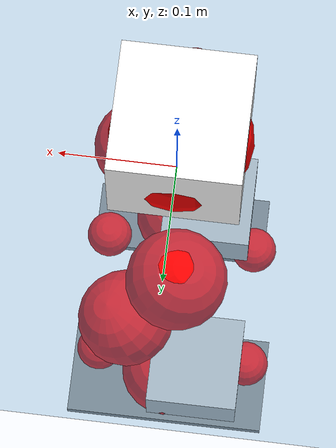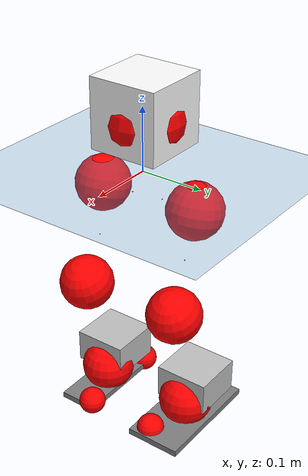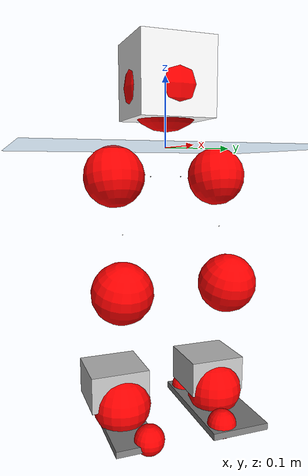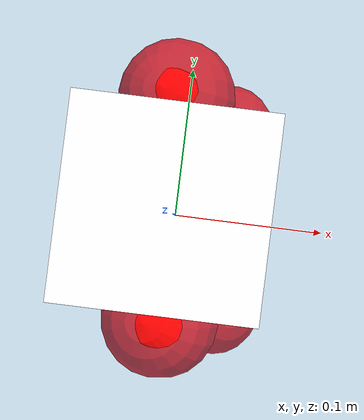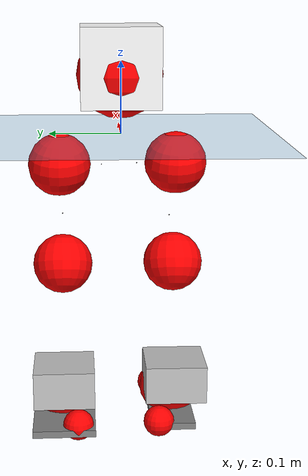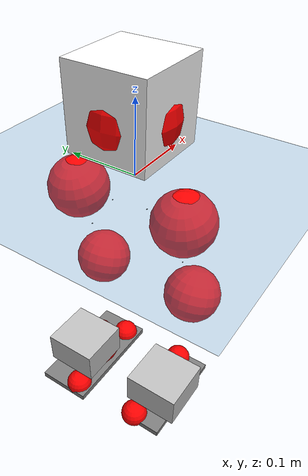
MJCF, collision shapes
<mujoco model="pi_12dof_release_v1">
  <compiler angle="radian" assetdir="assets" balanceinertia="true" inertiafromgeom="false"/>

  <option timestep="0.005" density="1.2" viscosity="2e-05"/>

  <size nkey="1"/>

  <visual>
    <quality shadowsize="8192"/>
    <map shadowclip="0.5"/>
  </visual>

  <default>
    <default class="/">
      <joint armature="0.01" damping="0.01" frictionloss="0.01"/>
      <geom contype="0" conaffinity="0" group="1" solref="-1000 -80"/>
      <site size="0.01 0.005 0.005" group="5"/>
      <general forcelimited="true" biastype="affine" gainprm="20" biasprm="0 -20 -0.5"/>
      <default class="foot">
        <geom size="0.0845 0.036 0.005" type="box" condim="6" group="4" priority="1" friction="0.9 0.2 0.2" solimp="0.015 1 0.005"/>
      </default>
      <default class="reward_collision_sphere">
        <geom group="5" rgba="1 0 0 1"/>
      </default>
    </default>
  </default>

  <asset>
    <texture type="skybox" colorspace="auto" name="//unnamed_texture_0" builtin="gradient" rgb1="0.95 0.95 0.95" rgb2="0.95 0.95 0.95" width="100" height="600"/>
    <texture type="2d" colorspace="auto" name="texplane" builtin="checker" rgb1="0.345 0.575 0.748" rgb2="0.345 0.575 0.748" markrgb="1 1 1" width="512" height="512"/>
    <material name="MatPlane" class="/" texture="texplane" texuniform="true" texrepeat="2 2" specular="0.9"/>
    <mesh name="baselink_1" class="/" file="baselink_1.STL"/>
    <mesh name="r_hip_pitch_link" class="/" file="r_hip_pitch_link.STL"/>
    <mesh name="r_hip_roll_link" class="/" file="r_hip_roll_link.STL"/>
    <mesh name="r_thigh_link" class="/" file="r_thigh_link.STL"/>
    <mesh name="r_calf_link" class="/" file="r_calf_link.STL"/>
    <mesh name="r_ankle_pitch_link" class="/" file="r_ankle_pitch_link.STL"/>
    <mesh name="r_ankle_roll_link" class="/" file="r_ankle_roll_link.STL"/>
    <mesh name="l_hip_pitch_link" class="/" file="l_hip_pitch_link.STL"/>
    <mesh name="l_hip_roll_link" class="/" file="l_hip_roll_link.STL"/>
    <mesh name="l_thigh_link" class="/" file="l_thigh_link.STL"/>
    <mesh name="l_calf_link" class="/" file="l_calf_link.STL"/>
    <mesh name="l_ankle_pitch_link" class="/" file="l_ankle_pitch_link.STL"/>
    <mesh name="l_ankle_roll_link" class="/" file="l_ankle_roll_link.STL"/>
  </asset>

  <worldbody>
    <geom name="floor" class="/" size="100 100 0.125" type="plane" group="0" material="MatPlane"/>
    <light name="toplight_shadow" class="/" pos="0 0 5" dir="0.0990148 0.0990148 -0.990148" type="directional" ambient="0.04 0.04 0.04" diffuse="0.55 0.55 0.55" specular="0.12 0.12 0.12"/>
    <light name="toplight_fill" class="/" pos="0 0 5" dir="0.0990148 0.0990148 -0.990148" type="directional" castshadow="false" ambient="0.04 0.04 0.04" diffuse="0.3 0.3 0.3" specular="0.08 0.08 0.08"/>
    <body name="trunk" pos="-0.00351326 0.00173738 -0.00131868" quat="0.999999 -0.000757657 0.000946389 7.36967e-05">
      <inertial pos="0.00172668 -0.00383247 0.0482803" quat="0.697035 0.0113125 0.00948103 0.716885" mass="2.80421" diaginertia="0.0117535 0.00885478 0.00974566"/>
      <joint name="//unnamed_joint_0" type="free"/>
      <geom name="//unnamed_geom_1" class="/" type="mesh" density="0" rgba="1 1 1 1" mesh="baselink_1"/>
      <geom name="//unnamed_geom_2" class="/" size="0.0541024 0.0541024 0.0541024" pos="0 0 0.0950668" type="box" rgba="1 1 1 1"/>
      <geom name="//unnamed_geom_3" class="reward_collision_sphere" size="0.0595127" pos="0 0 0.0831835"/>
      <site name="imu" class="/" pos="0.0117837 -0.0107514 0.0244995" size="0.0108205"/>
      <camera name="track" class="/" pos="0 -2.00798 0" quat="0.707107 0.707107 0 0" mode="trackcom"/>
      <camera name="ego_camera" class="/" pos="0.0790363 0 0.2139" quat="-0.5 -0.5 0.5 0.5"/>
      <body name="r_hip_pitch_link" pos="0.000273163 -0.0232425 -0.0392476" quat="0.992315 2.44038e-05 -0.123729 0.00103653">
        <inertial pos="0.0053512 -0.0575151 -0.000122817" quat="-0.0194226 0.705208 -0.0245373 0.70831" mass="0.451692" diaginertia="0.000135949 0.000100977 0.000190738"/>
        <joint name="r_hip_pitch_joint" class="/" pos="0 0 0" axis="0.00884247 -0.999907 0.0104116" range="-1.83599 1.23659" armature="0.010644" damping="0" frictionloss="0.0110332"/>
        <geom name="//unnamed_geom_4" class="/" type="mesh" density="0" rgba="0.75294 0.75294 0.75294 1" mesh="r_hip_pitch_link"/>
        <geom name="//unnamed_geom_5" class="/" size="0.000541024 0.000541024 0.000541024" type="box" rgba="0.75294 0.75294 0.75294 1"/>
        <body name="r_hip_roll_link" pos="0.000736966 -0.0543607 -0.000197437" quat="1 3.67019e-05 -0.000205619 -0.000695444">
          <inertial pos="-0.00139527 0.00161393 -0.0668586" quat="0.70214 -0.0776368 -0.0826312 0.702954" mass="0.484636" diaginertia="0.00042425 0.000276947 0.000295872"/>
          <joint name="r_hip_roll_joint" class="/" pos="0 0 0" axis="-0.999922 -0.0101736 0.00722797" range="-0.0750416 0.4313" armature="0.0115725" damping="0.00582084" frictionloss="0.0115172"/>
          <geom name="//unnamed_geom_6" class="/" type="mesh" density="0" rgba="0.75294 0.75294 0.75294 1" mesh="r_hip_roll_link"/>
          <geom name="//unnamed_geom_7" class="/" size="0.000541024 0.000541024 0.000541024" type="box" rgba="0.75294 0.75294 0.75294 1"/>
          <geom name="//unnamed_geom_8" class="reward_collision_sphere" size="0.0432819"/>
          <body name="r_thigh_link" pos="-0.00154418 0.00585843 -0.0819353" quat="1 0.000182047 0.000359123 0.000516587">
            <inertial pos="0.00118794 -0.00168121 -0.0558469" quat="0.72474 0.688927 -0.010119 0.00536005" mass="0.142583" diaginertia="0.000165727 9.55359e-05 0.000141867"/>
            <joint name="r_thigh_joint" class="/" pos="0 0 0" axis="-0.00129119 -0.00078422 -0.999999" stiffness="0.028598" range="-0.325842 0.499257" armature="0.010491" damping="0.00819264" frictionloss="0.010181"/>
            <geom name="//unnamed_geom_9" class="/" type="mesh" density="0" rgba="0.75294 0.75294 0.75294 1" mesh="r_thigh_link"/>
            <geom name="//unnamed_geom_10" class="/" size="0.000541024 0.000541024 0.000541024" type="box" rgba="0.75294 0.75294 0.75294 1"/>
            <body name="r_calf_link" pos="0.00550755 -0.00811968 -0.0809997" quat="0.947543 -0.000129178 0.319629 0.000573928">
              <inertial pos="-0.00537194 0.00156885 -0.0787702" quat="0.999981 -0.00380579 -4.96833e-05 0.004831" mass="0.997644" diaginertia="0.00425383 0.00338761 0.000387963"/>
              <joint name="r_calf_joint" class="/" pos="0 0 0" axis="-0.00630686 -0.999702 0.0235617" range="-1.68301 0.64237" armature="0.0112245" damping="0" frictionloss="0.00956884"/>
              <geom name="//unnamed_geom_11" class="/" type="mesh" density="0" rgba="0.75294 0.75294 0.75294 1" mesh="r_calf_link"/>
              <geom name="//unnamed_geom_12" class="/" size="0.000541024 0.000541024 0.000541024" type="box" rgba="0.75294 0.75294 0.75294 1"/>
              <geom name="//unnamed_geom_13" class="reward_collision_sphere" size="0.0432819"/>
              <body name="r_ankle_pitch_link" pos="0.00112235 0.0023308 -0.166645" quat="0.980045 3.10641e-05 -0.198775 2.37974e-05">
                <inertial pos="0.00422137 -0.00271007 0.00208231" quat="0.00180288 0.707727 -0.000901221 0.706484" mass="0.229359" diaginertia="0.00039791 0.000238886 0.000290305"/>
                <joint name="r_ankle_pitch_joint" class="/" pos="0 0 0" axis="0.00147725 -0.999997 0.00185567" range="-1.2676 0.499492" armature="0.0121863" damping="0.013621" frictionloss="0.0114584"/>
                <geom name="//unnamed_geom_14" class="/" type="mesh" density="0" rgba="0.75294 0.75294 0.75294 1" mesh="r_ankle_pitch_link"/>
                <geom name="//unnamed_geom_15" class="/" size="0.0421999 0.0432819 0.0270512" type="box" rgba="0.75294 0.75294 0.75294 1"/>
                <body name="r_ankle_roll_link" pos="0.0791013 0.00527761 -0.00309996" quat="0.999997 -0.0013183 0.00226645 2.29881e-06">
                  <inertial pos="-0.0313928 0.000752231 -0.0198433" quat="0.558052 0.440311 0.43536 0.552418" mass="0.660195" diaginertia="0.00144346 0.000984293 0.000609502"/>
                  <joint name="r_ankle_roll_joint" class="/" pos="0 0 0" axis="-0.999641 0.0179424 0.0198956" stiffness="0.000728244" range="-0.162555 0.108202" armature="0.0121247" damping="0" frictionloss="0.00958581"/>
                  <geom name="//unnamed_geom_16" class="/" type="mesh" density="0" rgba="0.75294 0.75294 0.75294 1" mesh="r_ankle_roll_link"/>
                  <geom name="//unnamed_geom_17" class="/" type="mesh" rgba="0.75294 0.75294 0.75294 1" mesh="r_ankle_roll_link"/>
                  <geom name="right_foot" class="foot" size="0.0827135 0.031228 0.00475338" pos="-0.0537447 0 -0.0522868"/>
                  <geom name="//unnamed_geom_19" class="reward_collision_sphere" size="0.0432819" pos="-0.0526909 0 -0.0237667"/>
                  <geom name="//unnamed_geom_20" class="reward_collision_sphere" size="0.021641" pos="0.0158073 0.0200798 -0.0475334"/>
                  <geom name="//unnamed_geom_21" class="reward_collision_sphere" size="0.021641" pos="-0.126458 0.0200798 -0.0475334"/>
                  <site name="right_foot" class="foot" pos="-0.0537447 0 -0.0522868" size="0.0108205"/>
                </body>
              </body>
            </body>
          </body>
        </body>
      </body>
      <body name="l_hip_pitch_link" pos="-0.00684326 0.026046 -0.0395521" quat="0.992166 -0.00087572 -0.124924 -0.000325205">
        <inertial pos="-0.00363902 0.060584 -0.000665564" quat="-0.0313703 0.706259 0.0433993 0.705925" mass="0.492367" diaginertia="0.000163473 0.000107835 0.000249911"/>
        <joint name="l_hip_pitch_joint" class="/" pos="0 0 0" axis="-0.0153968 0.999491 -0.0279444" stiffness="0.0214956" range="-1.16571 1.80208" armature="0.0134076" damping="0.0301321" frictionloss="0.0113506"/>
        <geom name="//unnamed_geom_22" class="/" type="mesh" density="0" rgba="0.75294 0.75294 0.75294 1" mesh="l_hip_pitch_link"/>
        <geom name="//unnamed_geom_23" class="/" size="0.000541024 0.000541024 0.000541024" type="box" rgba="0.75294 0.75294 0.75294 1"/>
        <body name="l_hip_roll_link" pos="0.000363085 0.058169 -3.32863e-05" quat="1 -0.00067519 -0.00026936 0.000532583">
          <inertial pos="0.00134303 -0.00468819 -0.072022" quat="0.697854 -0.0821793 -0.0839782 0.706537" mass="0.499169" diaginertia="0.000430345 0.000282508 0.000321105"/>
          <joint name="l_hip_roll_joint" class="/" pos="0 0 0" axis="-0.999997 -0.00107215 0.00213411" stiffness="0.00292442" range="-0.546669 0.134993" armature="0.00932274" damping="0.00664249" frictionloss="0.0106979"/>
          <geom name="//unnamed_geom_24" class="/" type="mesh" density="0" rgba="0.75294 0.75294 0.75294 1" mesh="l_hip_roll_link"/>
          <geom name="//unnamed_geom_25" class="/" size="0.000541024 0.000541024 0.000541024" type="box" rgba="0.75294 0.75294 0.75294 1"/>
          <geom name="//unnamed_geom_26" class="reward_collision_sphere" size="0.0432819"/>
          <body name="l_thigh_link" pos="0.000488936 -0.00284129 -0.0765769" quat="0.999996 0.000567096 -0.00137209 0.00242541">
            <inertial pos="0.00292867 -0.00145385 -0.0629249" quat="0.676974 0.736005 -2.28949e-05 0.00129" mass="0.14834" diaginertia="0.000160648 9.4166e-05 0.000136248"/>
            <joint name="l_thigh_joint" class="/" pos="0 0 0" axis="0.00669038 0.00779594 -0.999947" range="-0.510916 0.251794" armature="0.0103194" damping="0.0164909" frictionloss="0.0117384"/>
            <geom name="//unnamed_geom_27" class="/" type="mesh" density="0" rgba="0.75294 0.75294 0.75294 1" mesh="l_thigh_link"/>
            <geom name="//unnamed_geom_28" class="/" size="0.000541024 0.000541024 0.000541024" type="box" rgba="0.75294 0.75294 0.75294 1"/>
            <body name="l_calf_link" pos="0.00454133 0.00144476 -0.0862057" quat="0.947388 -0.000277247 0.320088 -0.000514201">
              <inertial pos="-0.000930194 0.004337 -0.0820975" quat="0.999577 0.0116732 -0.00662487 0.0258146" mass="1.00485" diaginertia="0.00445088 0.00343916 0.00039998"/>
              <joint name="l_calf_joint" class="/" pos="0 0 0" axis="0.000704347 0.999851 0.017222" stiffness="0.00496518" range="-0.669515 1.6863" armature="0.0103911" damping="0.0143336" frictionloss="0.012259"/>
              <geom name="//unnamed_geom_29" class="/" type="mesh" density="0" rgba="0.75294 0.75294 0.75294 1" mesh="l_calf_link"/>
              <geom name="//unnamed_geom_30" class="/" size="0.000541024 0.000541024 0.000541024" type="box" rgba="0.75294 0.75294 0.75294 1"/>
              <geom name="//unnamed_geom_31" class="reward_collision_sphere" size="0.0432819"/>
              <body name="l_ankle_pitch_link" pos="0.00224265 0.000279317 -0.170136" quat="0.980226 -0.000487593 -0.197882 -0.000106892">
                <inertial pos="0.0077672 -0.00204194 0.00213194" quat="-0.029792 0.712784 -0.00183712 0.700748" mass="0.21484" diaginertia="0.00039428 0.000217706 0.000261201"/>
                <joint name="l_ankle_pitch_joint" class="/" pos="0 0 0" axis="0.00697316 0.999953 0.00676987" stiffness="0.00691754" range="-0.521412 1.29429" armature="0.00943929" damping="0.0181083" frictionloss="0.0121247"/>
                <geom name="//unnamed_geom_32" class="/" type="mesh" density="0" rgba="0.75294 0.75294 0.75294 1" mesh="l_ankle_pitch_link"/>
                <geom name="//unnamed_geom_33" class="/" size="0.0421999 0.0432819 0.0270512" type="box" rgba="0.75294 0.75294 0.75294 1"/>
                <body name="l_ankle_roll_link" pos="0.0794556 0.000543135 -0.000409262" quat="1 6.79341e-06 6.77948e-06 1.30512e-05">
                  <inertial pos="-0.0218014 0.00551967 -0.0216762" quat="0.563325 0.430839 0.429938 0.558745" mass="0.620816" diaginertia="0.00145193 0.000990377 0.000651846"/>
                  <joint name="l_ankle_roll_joint" class="/" pos="0 0 0" axis="-0.999929 0.0104883 0.00570234" range="-0.107769 0.159047" armature="0.0120835" damping="0" frictionloss="0.0090339"/>
                  <geom name="//unnamed_geom_34" class="/" type="mesh" density="0" rgba="0.75294 0.75294 0.75294 1" mesh="l_ankle_roll_link"/>
                  <geom name="//unnamed_geom_35" class="/" type="mesh" rgba="0.75294 0.75294 0.75294 1" mesh="l_ankle_roll_link"/>
                  <geom name="left_foot" class="foot" size="0.0931705 0.0441439 0.00497301" pos="-0.0537447 0 -0.0522868"/>
                  <geom name="//unnamed_geom_37" class="reward_collision_sphere" size="0.0432819" pos="-0.0526909 0 -0.0237667"/>
                  <geom name="//unnamed_geom_38" class="reward_collision_sphere" size="0.021641" pos="0.0158073 -0.0200798 -0.0475334"/>
                  <geom name="//unnamed_geom_39" class="reward_collision_sphere" size="0.021641" pos="-0.126458 -0.0200798 -0.0475334"/>
                  <site name="left_foot" class="foot" pos="-0.0537447 0 -0.0522868" size="0.0108205"/>
                </body>
              </body>
            </body>
          </body>
        </body>
      </body>
    </body>
  </worldbody>

  <contact>
    <pair class="/" geom1="floor" geom2="right_foot" name="//unnamed_contact_1"/>
    <pair class="/" geom1="floor" geom2="left_foot" name="//unnamed_contact_0"/>
  </contact>

  <actuator>
    <general name="r_hip_pitch_joint" class="/" joint="r_hip_pitch_joint" forcerange="-23.9372 23.9372" gainprm="22.6565" biasprm="0 -22.6565 -0.530661"/>
    <general name="r_hip_roll_joint" class="/" joint="r_hip_roll_joint" forcerange="-19.42 19.42" gainprm="22.6565" biasprm="0 -22.6565 -0.530661"/>
    <general name="r_thigh_joint" class="/" joint="r_thigh_joint" forcerange="-21.2932 21.2932" gainprm="22.6565" biasprm="0 -22.6565 -0.530661"/>
    <general name="r_calf_joint" class="/" joint="r_calf_joint" forcerange="-18.3587 18.3587" gainprm="22.6565" biasprm="0 -22.6565 -0.530661"/>
    <general name="r_ankle_pitch_joint" class="/" joint="r_ankle_pitch_joint" forcerange="-20.6501 20.6501" gainprm="22.6565" biasprm="0 -22.6565 -0.530661"/>
    <general name="r_ankle_roll_joint" class="/" joint="r_ankle_roll_joint" forcerange="-24.5851 24.5851" gainprm="22.6565" biasprm="0 -22.6565 -0.530661"/>
    <general name="l_hip_pitch_joint" class="/" joint="l_hip_pitch_joint" forcerange="-23.0648 23.0648" gainprm="22.6565" biasprm="0 -22.6565 -0.530661"/>
    <general name="l_hip_roll_joint" class="/" joint="l_hip_roll_joint" forcerange="-25.0414 25.0414" gainprm="22.6565" biasprm="0 -22.6565 -0.530661"/>
    <general name="l_thigh_joint" class="/" joint="l_thigh_joint" forcerange="-23.9893 23.9893" gainprm="22.6565" biasprm="0 -22.6565 -0.530661"/>
    <general name="l_calf_joint" class="/" joint="l_calf_joint" forcerange="-22.8841 22.8841" gainprm="22.6565" biasprm="0 -22.6565 -0.530661"/>
    <general name="l_ankle_pitch_joint" class="/" joint="l_ankle_pitch_joint" forcerange="-24.3621 24.3621" gainprm="22.6565" biasprm="0 -22.6565 -0.530661"/>
    <general name="l_ankle_roll_joint" class="/" joint="l_ankle_roll_joint" forcerange="-22.7548 22.7548" gainprm="22.6565" biasprm="0 -22.6565 -0.530661"/>
  </actuator>

  <sensor>
    <gyro site="imu" name="imu_angular_velocity"/>
    <velocimeter site="imu" name="imu_linear_velocity"/>
    <framelinvel objtype="site" objname="left_foot" name="left_foot_global_linear_velocity"/>
    <framelinvel objtype="site" objname="right_foot" name="right_foot_global_linear_velocity"/>
  </sensor>

  <keyframe>
    <key name="home" qpos="0 0 0.291 1 0 0 0 0.4 0 0 -0.8 0.4 0 -0.4 0 0 0.8 -0.4 0"/>
  </keyframe>
</mujoco>
